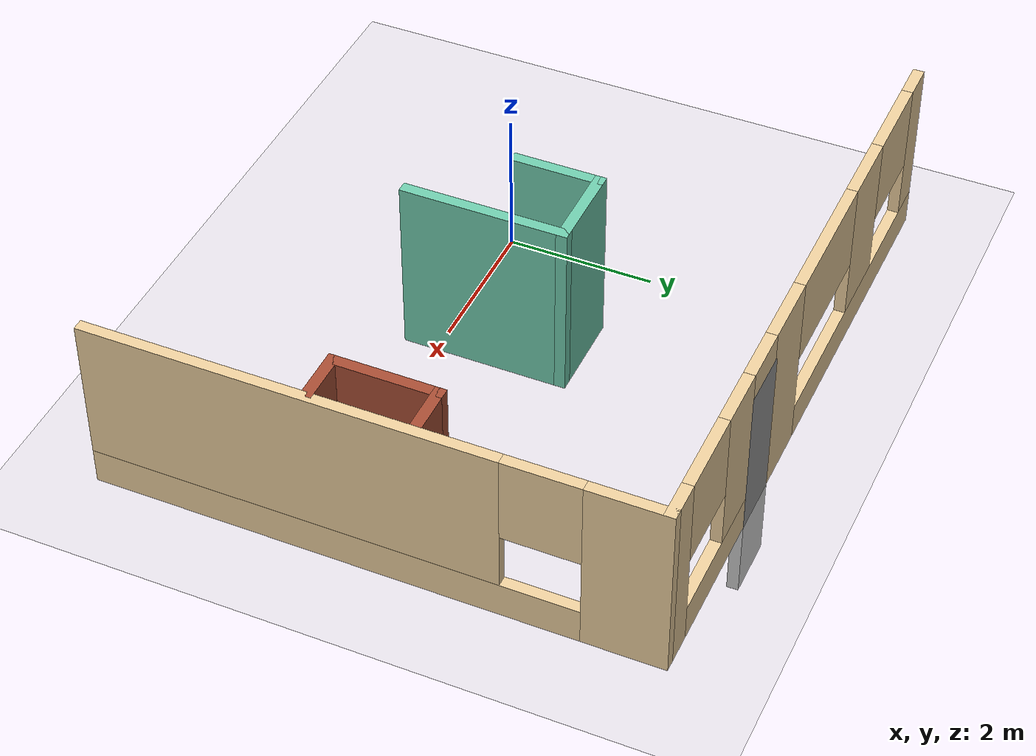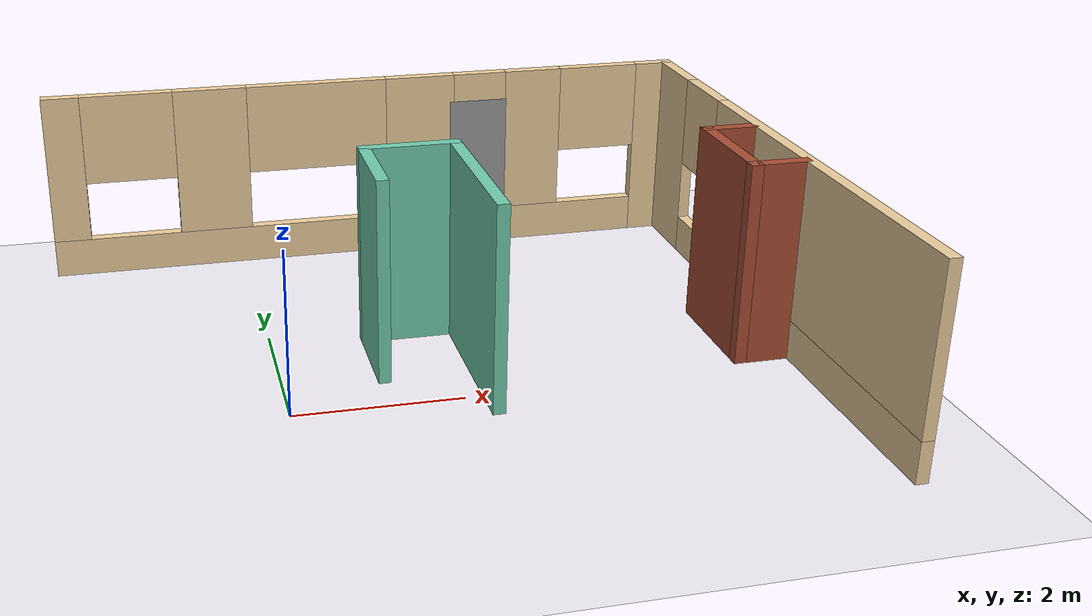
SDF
<sdf version="1.6">
 <world name="default">
  <model name="ground_plane">
   <static>1</static>
   <link name="link">
    <collision name="collision">
     <geometry><plane><normal>0 0 1</normal><size>100 100</size></plane></geometry>
     <surface><friction><ode><mu>100</mu><mu2>50</mu2></ode></friction></surface>
    </collision>
    <visual name="visual">
     <cast_shadows>0</cast_shadows>
     <geometry><plane><normal>0 0 1</normal><size>100 100</size></plane></geometry>
     <material>
      <script><uri>file://media/materials/scripts/gazebo.material</uri><name>Gazebo/Grey</name></script>
     </material>
    </visual>
   </link>
  </model>
  <model name="my_world">
   <link name="Wall_0">
    <pose>5.30002 0.8 0 0 0 -1.5708</pose>
    <visual name="Wall_0_Visual_0">
     <pose>-3.20604 0 1.25 0 -0 0</pose>
     <geometry><box><size>1.08792 0.15 2.5</size></box></geometry>
     <material>
      <script><uri>file://media/materials/scripts/gazebo.material</uri><name>Gazebo/Grey</name></script>
      <ambient>0.921569 0.807843 0.615686 1</ambient>
      <diffuse>0.7 0.7 0.7 1</diffuse>
      <specular>0.01 0.01 0.01 1</specular>
      <emissive>0 0 0 1</emissive>
      <shader type="pixel"/>
     </material>
     <meta><layer>0</layer></meta>
    </visual>
    <visual name="Wall_0_Visual_1">
     <pose>0.543962 0 0.25 0 -0 0</pose>
     <geometry><box><size>6.41208 0.15 0.5</size></box></geometry>
     <material>
      <script><uri>file://media/materials/scripts/gazebo.material</uri><name>Gazebo/Grey</name></script>
      <ambient>0.921569 0.807843 0.615686 1</ambient>
      <diffuse>0.7 0.7 0.7 1</diffuse>
      <specular>0.01 0.01 0.01 1</specular>
      <emissive>0 0 0 1</emissive>
      <shader type="pixel"/>
     </material>
     <meta><layer>0</layer></meta>
    </visual>
    <visual name="Wall_0_Visual_2">
     <pose>1.05042 0 1.5 0 -0 0</pose>
     <geometry><box><size>5.39915 0.15 2</size></box></geometry>
     <material>
      <script><uri>file://media/materials/scripts/gazebo.material</uri><name>Gazebo/Grey</name></script>
      <ambient>0.921569 0.807843 0.615686 1</ambient>
      <diffuse>0.7 0.7 0.7 1</diffuse>
      <specular>0.01 0.01 0.01 1</specular>
      <emissive>0 0 0 1</emissive>
      <shader type="pixel"/>
     </material>
     <meta><layer>0</layer></meta>
    </visual>
    <visual name="Wall_0_Visual_3">
     <pose>-2.15562 0 1.9 0 -0 0</pose>
     <geometry><box><size>1.01292 0.15 1.2</size></box></geometry>
     <material>
      <script><uri>file://media/materials/scripts/gazebo.material</uri><name>Gazebo/Grey</name></script>
      <ambient>0.921569 0.807843 0.615686 1</ambient>
      <diffuse>0.7 0.7 0.7 1</diffuse>
      <specular>0.01 0.01 0.01 1</specular>
      <emissive>0 0 0 1</emissive>
      <shader type="pixel"/>
     </material>
     <meta><layer>0</layer></meta>
    </visual>
    <collision name="Wall_0_Collision_0">
     <pose>-3.20604 0 1.25 0 -0 0</pose>
     <geometry><box><size>1.08792 0.15 2.5</size></box></geometry>
     <surface>
      <friction>
       <ode><mu>1</mu><mu2>1</mu2><fdir1>0 0 0</fdir1><slip1>0</slip1><slip2>0</slip2></ode>
       <torsional>
        <coefficient>1</coefficient>
        <patch_radius>0</patch_radius>
        <surface_radius>0</surface_radius>
        <use_patch_radius>1</use_patch_radius>
        <ode><slip>0</slip></ode>
       </torsional>
      </friction>
      <bounce><restitution_coefficient>0</restitution_coefficient><threshold>1e+06</threshold></bounce>
      <contact>
       <collide_without_contact>0</collide_without_contact>
       <collide_without_contact_bitmask>1</collide_without_contact_bitmask>
       <collide_bitmask>1</collide_bitmask>
       <ode>
        <soft_cfm>0</soft_cfm>
        <soft_erp>0.2</soft_erp>
        <kp>1e+13</kp>
        <kd>1</kd>
        <max_vel>0.01</max_vel>
        <min_depth>0</min_depth>
       </ode>
       <bullet>
        <split_impulse>1</split_impulse>
        <split_impulse_penetration_threshold>-0.01</split_impulse_penetration_threshold>
        <soft_cfm>0</soft_cfm>
        <soft_erp>0.2</soft_erp>
        <kp>1e+13</kp>
        <kd>1</kd>
       </bullet>
      </contact>
     </surface>
    </collision>
    <collision name="Wall_0_Collision_3">
     <pose>-2.15562 0 1.9 0 -0 0</pose>
     <geometry><box><size>1.01292 0.15 1.2</size></box></geometry>
     <surface>
      <friction>
       <ode><mu>1</mu><mu2>1</mu2><fdir1>0 0 0</fdir1><slip1>0</slip1><slip2>0</slip2></ode>
       <torsional>
        <coefficient>1</coefficient>
        <patch_radius>0</patch_radius>
        <surface_radius>0</surface_radius>
        <use_patch_radius>1</use_patch_radius>
        <ode><slip>0</slip></ode>
       </torsional>
      </friction>
      <bounce><restitution_coefficient>0</restitution_coefficient><threshold>1e+06</threshold></bounce>
      <contact>
       <collide_without_contact>0</collide_without_contact>
       <collide_without_contact_bitmask>1</collide_without_contact_bitmask>
       <collide_bitmask>1</collide_bitmask>
       <ode>
        <soft_cfm>0</soft_cfm>
        <soft_erp>0.2</soft_erp>
        <kp>1e+13</kp>
        <kd>1</kd>
        <max_vel>0.01</max_vel>
        <min_depth>0</min_depth>
       </ode>
       <bullet>
        <split_impulse>1</split_impulse>
        <split_impulse_penetration_threshold>-0.01</split_impulse_penetration_threshold>
        <soft_cfm>0</soft_cfm>
        <soft_erp>0.2</soft_erp>
        <kp>1e+13</kp>
        <kd>1</kd>
       </bullet>
      </contact>
     </surface>
    </collision>
    <collision name="Wall_0_Collision_1">
     <pose>0.543962 0 0.25 0 -0 0</pose>
     <geometry><box><size>6.41208 0.15 0.5</size></box></geometry>
     <surface>
      <friction>
       <ode><mu>1</mu><mu2>1</mu2><fdir1>0 0 0</fdir1><slip1>0</slip1><slip2>0</slip2></ode>
       <torsional>
        <coefficient>1</coefficient>
        <patch_radius>0</patch_radius>
        <surface_radius>0</surface_radius>
        <use_patch_radius>1</use_patch_radius>
        <ode><slip>0</slip></ode>
       </torsional>
      </friction>
      <bounce><restitution_coefficient>0</restitution_coefficient><threshold>1e+06</threshold></bounce>
      <contact>
       <collide_without_contact>0</collide_without_contact>
       <collide_without_contact_bitmask>1</collide_without_contact_bitmask>
       <collide_bitmask>1</collide_bitmask>
       <ode>
        <soft_cfm>0</soft_cfm>
        <soft_erp>0.2</soft_erp>
        <kp>1e+13</kp>
        <kd>1</kd>
        <max_vel>0.01</max_vel>
        <min_depth>0</min_depth>
       </ode>
       <bullet>
        <split_impulse>1</split_impulse>
        <split_impulse_penetration_threshold>-0.01</split_impulse_penetration_threshold>
        <soft_cfm>0</soft_cfm>
        <soft_erp>0.2</soft_erp>
        <kp>1e+13</kp>
        <kd>1</kd>
       </bullet>
      </contact>
     </surface>
    </collision>
    <collision name="Wall_0_Collision_2">
     <pose>1.05042 0 1.5 0 -0 0</pose>
     <geometry><box><size>5.39915 0.15 2</size></box></geometry>
     <surface>
      <friction>
       <ode><mu>1</mu><mu2>1</mu2><fdir1>0 0 0</fdir1><slip1>0</slip1><slip2>0</slip2></ode>
       <torsional>
        <coefficient>1</coefficient>
        <patch_radius>0</patch_radius>
        <surface_radius>0</surface_radius>
        <use_patch_radius>1</use_patch_radius>
        <ode><slip>0</slip></ode>
       </torsional>
      </friction>
      <bounce><restitution_coefficient>0</restitution_coefficient><threshold>1e+06</threshold></bounce>
      <contact>
       <collide_without_contact>0</collide_without_contact>
       <collide_without_contact_bitmask>1</collide_without_contact_bitmask>
       <collide_bitmask>1</collide_bitmask>
       <ode>
        <soft_cfm>0</soft_cfm>
        <soft_erp>0.2</soft_erp>
        <kp>1e+13</kp>
        <kd>1</kd>
        <max_vel>0.01</max_vel>
        <min_depth>0</min_depth>
       </ode>
       <bullet>
        <split_impulse>1</split_impulse>
        <split_impulse_penetration_threshold>-0.01</split_impulse_penetration_threshold>
        <soft_cfm>0</soft_cfm>
        <soft_erp>0.2</soft_erp>
        <kp>1e+13</kp>
        <kd>1</kd>
       </bullet>
      </contact>
     </surface>
    </collision>
   </link>
   <link name="Wall_10">
    <pose>1.00002 4.475 0 0 -0 3.14159</pose>
    <inertial>
     <mass>1</mass>
     <inertia><ixx>1</ixx><ixy>0</ixy><ixz>0</ixz><iyy>1</iyy><iyz>0</iyz><izz>1</izz></inertia>
    </inertial>
    <visual name="Wall_10_Visual_0">
     <pose>-4.10405 0 1.25 0 -0 0</pose>
     <geometry><box><size>0.541899 0.15 2.5</size></box></geometry>
     <material>
      <script><uri>file://media/materials/scripts/gazebo.material</uri><name>Gazebo/Grey</name></script>
      <ambient>0.922 0.808 0.616 1</ambient>
      <diffuse>0.7 0.7 0.7 1</diffuse>
      <specular>0.01 0.01 0.01 1</specular>
      <emissive>0 0 0 1</emissive>
      <shader type="pixel"><normal_map>__default__</normal_map></shader>
     </material>
     <meta><layer>0</layer></meta>
    </visual>
    <visual name="Wall_10_Visual_1">
     <pose>-0.693015 0 1.25 0 -0 0</pose>
     <geometry><box><size>0.959191 0.15 2.5</size></box></geometry>
     <material>
      <script><uri>file://media/materials/scripts/gazebo.material</uri><name>Gazebo/Grey</name></script>
      <ambient>0.922 0.808 0.616 1</ambient>
      <diffuse>0.7 0.7 0.7 1</diffuse>
      <specular>0.01 0.01 0.01 1</specular>
      <emissive>0 0 0 1</emissive>
      <shader type="pixel"><normal_map>__default__</normal_map></shader>
     </material>
     <meta><layer>0</layer></meta>
    </visual>
    <visual name="Wall_10_Visual_2">
     <pose>-2.87351 0 0.25 0 -0 0</pose>
     <geometry><box><size>1.91919 0.15 0.5</size></box></geometry>
     <material>
      <script><uri>file://media/materials/scripts/gazebo.material</uri><name>Gazebo/Grey</name></script>
      <ambient>0.922 0.808 0.616 1</ambient>
      <diffuse>0.7 0.7 0.7 1</diffuse>
      <specular>0.01 0.01 0.01 1</specular>
      <emissive>0 0 0 1</emissive>
      <shader type="pixel"><normal_map>__default__</normal_map></shader>
     </material>
     <meta><layer>0</layer></meta>
    </visual>
    <visual name="Wall_10_Visual_3">
     <pose>2.08079 0 0.25 0 -0 0</pose>
     <geometry><box><size>4.58842 0.15 0.5</size></box></geometry>
     <material>
      <script><uri>file://media/materials/scripts/gazebo.material</uri><name>Gazebo/Grey</name></script>
      <ambient>0.922 0.808 0.616 1</ambient>
      <diffuse>0.7 0.7 0.7 1</diffuse>
      <specular>0.01 0.01 0.01 1</specular>
      <emissive>0 0 0 1</emissive>
      <shader type="pixel"><normal_map>__default__</normal_map></shader>
     </material>
     <meta><layer>0</layer></meta>
    </visual>
    <visual name="Wall_10_Visual_4">
     <pose>-2.31381 0 1.5 0 -0 0</pose>
     <geometry><box><size>0.799807 0.15 2</size></box></geometry>
     <material>
      <script><uri>file://media/materials/scripts/gazebo.material</uri><name>Gazebo/Grey</name></script>
      <ambient>0.922 0.808 0.616 1</ambient>
      <diffuse>0.7 0.7 0.7 1</diffuse>
      <specular>0.01 0.01 0.01 1</specular>
      <emissive>0 0 0 1</emissive>
      <shader type="pixel"><normal_map>__default__</normal_map></shader>
     </material>
     <meta><layer>0</layer></meta>
    </visual>
    <visual name="Wall_10_Visual_5">
     <pose>-2.31381 0 1.5 0 -0 0</pose>
     <geometry><box><size>0.799807 0.15 2</size></box></geometry>
     <material>
      <script><uri>file://media/materials/scripts/gazebo.material</uri><name>Gazebo/Grey</name></script>
      <ambient>0.922 0.808 0.616 1</ambient>
      <diffuse>0.7 0.7 0.7 1</diffuse>
      <specular>0.01 0.01 0.01 1</specular>
      <emissive>0 0 0 1</emissive>
      <shader type="pixel"><normal_map>__default__</normal_map></shader>
     </material>
     <meta><layer>0</layer></meta>
    </visual>
    <visual name="Wall_10_Visual_6">
     <pose>2.18653 0 1.5 0 -0 0</pose>
     <geometry><box><size>0.979424 0.15 2</size></box></geometry>
     <material>
      <script><uri>file://media/materials/scripts/gazebo.material</uri><name>Gazebo/Grey</name></script>
      <ambient>0.922 0.808 0.616 1</ambient>
      <diffuse>0.7 0.7 0.7 1</diffuse>
      <specular>0.01 0.01 0.01 1</specular>
      <emissive>0 0 0 1</emissive>
      <shader type="pixel"><normal_map>__default__</normal_map></shader>
     </material>
     <meta><layer>0</layer></meta>
    </visual>
    <visual name="Wall_10_Visual_7">
     <pose>4.13094 0 1.5 0 -0 0</pose>
     <geometry><box><size>0.48812 0.15 2</size></box></geometry>
     <material>
      <script><uri>file://media/materials/scripts/gazebo.material</uri><name>Gazebo/Grey</name></script>
      <ambient>0.922 0.808 0.616 1</ambient>
      <diffuse>0.7 0.7 0.7 1</diffuse>
      <specular>0.01 0.01 0.01 1</specular>
      <emissive>0 0 0 1</emissive>
      <shader type="pixel"><normal_map>__default__</normal_map></shader>
     </material>
     <meta><layer>0</layer></meta>
    </visual>
    <visual name="Wall_10_Visual_8">
     <pose>-3.27341 0 1.9 0 -0 0</pose>
     <geometry><box><size>1.11938 0.15 1.2</size></box></geometry>
     <material>
      <script><uri>file://media/materials/scripts/gazebo.material</uri><name>Gazebo/Grey</name></script>
      <ambient>0.922 0.808 0.616 1</ambient>
      <diffuse>0.7 0.7 0.7 1</diffuse>
      <specular>0.01 0.01 0.01 1</specular>
      <emissive>0 0 0 1</emissive>
      <shader type="pixel"><normal_map>__default__</normal_map></shader>
     </material>
     <meta><layer>0</layer></meta>
    </visual>
    <visual name="Wall_10_Visual_9">
     <pose>0.741701 0 1.9 0 -0 0</pose>
     <geometry><box><size>1.91024 0.15 1.2</size></box></geometry>
     <material>
      <script><uri>file://media/materials/scripts/gazebo.material</uri><name>Gazebo/Grey</name></script>
      <ambient>0.922 0.808 0.616 1</ambient>
      <diffuse>0.7 0.7 0.7 1</diffuse>
      <specular>0.01 0.01 0.01 1</specular>
      <emissive>0 0 0 1</emissive>
      <shader type="pixel"><normal_map>__default__</normal_map></shader>
     </material>
     <meta><layer>0</layer></meta>
    </visual>
    <visual name="Wall_10_Visual_10">
     <pose>3.28156 0 1.9 0 -0 0</pose>
     <geometry><box><size>1.21064 0.15 1.2</size></box></geometry>
     <material>
      <script><uri>file://media/materials/scripts/gazebo.material</uri><name>Gazebo/Grey</name></script>
      <ambient>0.922 0.808 0.616 1</ambient>
      <diffuse>0.7 0.7 0.7 1</diffuse>
      <specular>0.01 0.01 0.01 1</specular>
      <emissive>0 0 0 1</emissive>
      <shader type="pixel"><normal_map>__default__</normal_map></shader>
     </material>
     <meta><layer>0</layer></meta>
    </visual>
    <visual name="Wall_10_Visual_11">
     <pose>-1.54326 0 2.25 0 -0 0</pose>
     <geometry><box><size>0.7413 0.15 0.5</size></box></geometry>
     <material>
      <script><uri>file://media/materials/scripts/gazebo.material</uri><name>Gazebo/Grey</name></script>
      <ambient>0.922 0.808 0.616 1</ambient>
      <diffuse>0.7 0.7 0.7 1</diffuse>
      <specular>0.01 0.01 0.01 1</specular>
      <emissive>0 0 0 1</emissive>
      <shader type="pixel"><normal_map>__default__</normal_map></shader>
     </material>
     <meta><layer>0</layer></meta>
    </visual>
    <visual name="Wall_10_Visual_12">
     <pose>-1.54326 0 2.25 0 -0 0</pose>
     <geometry><box><size>0.7413 0.15 0.5</size></box></geometry>
     <material>
      <script><uri>file://media/materials/scripts/gazebo.material</uri><name>Gazebo/Grey</name></script>
      <ambient>0.922 0.808 0.616 1</ambient>
      <diffuse>0.7 0.7 0.7 1</diffuse>
      <specular>0.01 0.01 0.01 1</specular>
      <emissive>0 0 0 1</emissive>
      <shader type="pixel"><normal_map>__default__</normal_map></shader>
     </material>
     <meta><layer>0</layer></meta>
    </visual>
    <collision name="Wall_10_Collision_8">
     <pose>-3.27341 0 1.9 0 -0 0</pose>
     <geometry><box><size>1.11938 0.15 1.2</size></box></geometry>
     <surface>
      <friction>
       <ode><mu>1</mu><mu2>1</mu2><fdir1>0 0 0</fdir1><slip1>0</slip1><slip2>0</slip2></ode>
       <torsional>
        <coefficient>1</coefficient>
        <patch_radius>0</patch_radius>
        <surface_radius>0</surface_radius>
        <use_patch_radius>1</use_patch_radius>
        <ode><slip>0</slip></ode>
       </torsional>
      </friction>
      <bounce><restitution_coefficient>0</restitution_coefficient><threshold>1e+06</threshold></bounce>
      <contact>
       <collide_without_contact>0</collide_without_contact>
       <collide_without_contact_bitmask>1</collide_without_contact_bitmask>
       <collide_bitmask>1</collide_bitmask>
       <ode>
        <soft_cfm>0</soft_cfm>
        <soft_erp>0.2</soft_erp>
        <kp>1e+13</kp>
        <kd>1</kd>
        <max_vel>0.01</max_vel>
        <min_depth>0</min_depth>
       </ode>
       <bullet>
        <split_impulse>1</split_impulse>
        <split_impulse_penetration_threshold>-0.01</split_impulse_penetration_threshold>
        <soft_cfm>0</soft_cfm>
        <soft_erp>0.2</soft_erp>
        <kp>1e+13</kp>
        <kd>1</kd>
       </bullet>
      </contact>
     </surface>
    </collision>
    <collision name="Wall_10_Collision_0">
     <pose>-4.10405 0 1.25 0 -0 0</pose>
     <geometry><box><size>0.541899 0.15 2.5</size></box></geometry>
     <surface>
      <friction>
       <ode><mu>1</mu><mu2>1</mu2><fdir1>0 0 0</fdir1><slip1>0</slip1><slip2>0</slip2></ode>
       <torsional>
        <coefficient>1</coefficient>
        <patch_radius>0</patch_radius>
        <surface_radius>0</surface_radius>
        <use_patch_radius>1</use_patch_radius>
        <ode><slip>0</slip></ode>
       </torsional>
      </friction>
      <bounce><restitution_coefficient>0</restitution_coefficient><threshold>1e+06</threshold></bounce>
      <contact>
       <collide_without_contact>0</collide_without_contact>
       <collide_without_contact_bitmask>1</collide_without_contact_bitmask>
       <collide_bitmask>1</collide_bitmask>
       <ode>
        <soft_cfm>0</soft_cfm>
        <soft_erp>0.2</soft_erp>
        <kp>1e+13</kp>
        <kd>1</kd>
        <max_vel>0.01</max_vel>
        <min_depth>0</min_depth>
       </ode>
       <bullet>
        <split_impulse>1</split_impulse>
        <split_impulse_penetration_threshold>-0.01</split_impulse_penetration_threshold>
        <soft_cfm>0</soft_cfm>
        <soft_erp>0.2</soft_erp>
        <kp>1e+13</kp>
        <kd>1</kd>
       </bullet>
      </contact>
     </surface>
    </collision>
    <collision name="Wall_10_Collision_2">
     <pose>-2.87351 0 0.25 0 -0 0</pose>
     <geometry><box><size>1.91919 0.15 0.5</size></box></geometry>
     <surface>
      <friction>
       <ode><mu>1</mu><mu2>1</mu2><fdir1>0 0 0</fdir1><slip1>0</slip1><slip2>0</slip2></ode>
       <torsional>
        <coefficient>1</coefficient>
        <patch_radius>0</patch_radius>
        <surface_radius>0</surface_radius>
        <use_patch_radius>1</use_patch_radius>
        <ode><slip>0</slip></ode>
       </torsional>
      </friction>
      <bounce><restitution_coefficient>0</restitution_coefficient><threshold>1e+06</threshold></bounce>
      <contact>
       <collide_without_contact>0</collide_without_contact>
       <collide_without_contact_bitmask>1</collide_without_contact_bitmask>
       <collide_bitmask>1</collide_bitmask>
       <ode>
        <soft_cfm>0</soft_cfm>
        <soft_erp>0.2</soft_erp>
        <kp>1e+13</kp>
        <kd>1</kd>
        <max_vel>0.01</max_vel>
        <min_depth>0</min_depth>
       </ode>
       <bullet>
        <split_impulse>1</split_impulse>
        <split_impulse_penetration_threshold>-0.01</split_impulse_penetration_threshold>
        <soft_cfm>0</soft_cfm>
        <soft_erp>0.2</soft_erp>
        <kp>1e+13</kp>
        <kd>1</kd>
       </bullet>
      </contact>
     </surface>
    </collision>
    <collision name="Wall_10_Collision_1">
     <pose>-0.693015 0 1.25 0 -0 0</pose>
     <geometry><box><size>0.959191 0.15 2.5</size></box></geometry>
     <surface>
      <friction>
       <ode><mu>1</mu><mu2>1</mu2><fdir1>0 0 0</fdir1><slip1>0</slip1><slip2>0</slip2></ode>
       <torsional>
        <coefficient>1</coefficient>
        <patch_radius>0</patch_radius>
        <surface_radius>0</surface_radius>
        <use_patch_radius>1</use_patch_radius>
        <ode><slip>0</slip></ode>
       </torsional>
      </friction>
      <bounce><restitution_coefficient>0</restitution_coefficient><threshold>1e+06</threshold></bounce>
      <contact>
       <collide_without_contact>0</collide_without_contact>
       <collide_without_contact_bitmask>1</collide_without_contact_bitmask>
       <collide_bitmask>1</collide_bitmask>
       <ode>
        <soft_cfm>0</soft_cfm>
        <soft_erp>0.2</soft_erp>
        <kp>1e+13</kp>
        <kd>1</kd>
        <max_vel>0.01</max_vel>
        <min_depth>0</min_depth>
       </ode>
       <bullet>
        <split_impulse>1</split_impulse>
        <split_impulse_penetration_threshold>-0.01</split_impulse_penetration_threshold>
        <soft_cfm>0</soft_cfm>
        <soft_erp>0.2</soft_erp>
        <kp>1e+13</kp>
        <kd>1</kd>
       </bullet>
      </contact>
     </surface>
    </collision>
    <collision name="Wall_10_Collision_3">
     <pose>2.08079 0 0.25 0 -0 0</pose>
     <geometry><box><size>4.58842 0.15 0.5</size></box></geometry>
     <surface>
      <friction>
       <ode><mu>1</mu><mu2>1</mu2><fdir1>0 0 0</fdir1><slip1>0</slip1><slip2>0</slip2></ode>
       <torsional>
        <coefficient>1</coefficient>
        <patch_radius>0</patch_radius>
        <surface_radius>0</surface_radius>
        <use_patch_radius>1</use_patch_radius>
        <ode><slip>0</slip></ode>
       </torsional>
      </friction>
      <bounce><restitution_coefficient>0</restitution_coefficient><threshold>1e+06</threshold></bounce>
      <contact>
       <collide_without_contact>0</collide_without_contact>
       <collide_without_contact_bitmask>1</collide_without_contact_bitmask>
       <collide_bitmask>1</collide_bitmask>
       <ode>
        <soft_cfm>0</soft_cfm>
        <soft_erp>0.2</soft_erp>
        <kp>1e+13</kp>
        <kd>1</kd>
        <max_vel>0.01</max_vel>
        <min_depth>0</min_depth>
       </ode>
       <bullet>
        <split_impulse>1</split_impulse>
        <split_impulse_penetration_threshold>-0.01</split_impulse_penetration_threshold>
        <soft_cfm>0</soft_cfm>
        <soft_erp>0.2</soft_erp>
        <kp>1e+13</kp>
        <kd>1</kd>
       </bullet>
      </contact>
     </surface>
    </collision>
    <collision name="Wall_10_Collision_5">
     <pose>-2.31381 0 1.5 0 -0 0</pose>
     <geometry><box><size>0.799807 0.15 2</size></box></geometry>
     <surface>
      <friction>
       <ode><mu>1</mu><mu2>1</mu2><fdir1>0 0 0</fdir1><slip1>0</slip1><slip2>0</slip2></ode>
       <torsional>
        <coefficient>1</coefficient>
        <patch_radius>0</patch_radius>
        <surface_radius>0</surface_radius>
        <use_patch_radius>1</use_patch_radius>
        <ode><slip>0</slip></ode>
       </torsional>
      </friction>
      <bounce><restitution_coefficient>0</restitution_coefficient><threshold>1e+06</threshold></bounce>
      <contact>
       <collide_without_contact>0</collide_without_contact>
       <collide_without_contact_bitmask>1</collide_without_contact_bitmask>
       <collide_bitmask>1</collide_bitmask>
       <ode>
        <soft_cfm>0</soft_cfm>
        <soft_erp>0.2</soft_erp>
        <kp>1e+13</kp>
        <kd>1</kd>
        <max_vel>0.01</max_vel>
        <min_depth>0</min_depth>
       </ode>
       <bullet>
        <split_impulse>1</split_impulse>
        <split_impulse_penetration_threshold>-0.01</split_impulse_penetration_threshold>
        <soft_cfm>0</soft_cfm>
        <soft_erp>0.2</soft_erp>
        <kp>1e+13</kp>
        <kd>1</kd>
       </bullet>
      </contact>
     </surface>
    </collision>
    <collision name="Wall_10_Collision_4">
     <pose>-2.31381 0 1.5 0 -0 0</pose>
     <geometry><box><size>0.799807 0.15 2</size></box></geometry>
     <surface>
      <friction>
       <ode><mu>1</mu><mu2>1</mu2><fdir1>0 0 0</fdir1><slip1>0</slip1><slip2>0</slip2></ode>
       <torsional>
        <coefficient>1</coefficient>
        <patch_radius>0</patch_radius>
        <surface_radius>0</surface_radius>
        <use_patch_radius>1</use_patch_radius>
        <ode><slip>0</slip></ode>
       </torsional>
      </friction>
      <bounce><restitution_coefficient>0</restitution_coefficient><threshold>1e+06</threshold></bounce>
      <contact>
       <collide_without_contact>0</collide_without_contact>
       <collide_without_contact_bitmask>1</collide_without_contact_bitmask>
       <collide_bitmask>1</collide_bitmask>
       <ode>
        <soft_cfm>0</soft_cfm>
        <soft_erp>0.2</soft_erp>
        <kp>1e+13</kp>
        <kd>1</kd>
        <max_vel>0.01</max_vel>
        <min_depth>0</min_depth>
       </ode>
       <bullet>
        <split_impulse>1</split_impulse>
        <split_impulse_penetration_threshold>-0.01</split_impulse_penetration_threshold>
        <soft_cfm>0</soft_cfm>
        <soft_erp>0.2</soft_erp>
        <kp>1e+13</kp>
        <kd>1</kd>
       </bullet>
      </contact>
     </surface>
    </collision>
    <collision name="Wall_10_Collision_6">
     <pose>2.18653 0 1.5 0 -0 0</pose>
     <geometry><box><size>0.979424 0.15 2</size></box></geometry>
     <surface>
      <friction>
       <ode><mu>1</mu><mu2>1</mu2><fdir1>0 0 0</fdir1><slip1>0</slip1><slip2>0</slip2></ode>
       <torsional>
        <coefficient>1</coefficient>
        <patch_radius>0</patch_radius>
        <surface_radius>0</surface_radius>
        <use_patch_radius>1</use_patch_radius>
        <ode><slip>0</slip></ode>
       </torsional>
      </friction>
      <bounce><restitution_coefficient>0</restitution_coefficient><threshold>1e+06</threshold></bounce>
      <contact>
       <collide_without_contact>0</collide_without_contact>
       <collide_without_contact_bitmask>1</collide_without_contact_bitmask>
       <collide_bitmask>1</collide_bitmask>
       <ode>
        <soft_cfm>0</soft_cfm>
        <soft_erp>0.2</soft_erp>
        <kp>1e+13</kp>
        <kd>1</kd>
        <max_vel>0.01</max_vel>
        <min_depth>0</min_depth>
       </ode>
       <bullet>
        <split_impulse>1</split_impulse>
        <split_impulse_penetration_threshold>-0.01</split_impulse_penetration_threshold>
        <soft_cfm>0</soft_cfm>
        <soft_erp>0.2</soft_erp>
        <kp>1e+13</kp>
        <kd>1</kd>
       </bullet>
      </contact>
     </surface>
    </collision>
    <collision name="Wall_10_Collision_7">
     <pose>4.13094 0 1.5 0 -0 0</pose>
     <geometry><box><size>0.48812 0.15 2</size></box></geometry>
     <surface>
      <friction>
       <ode><mu>1</mu><mu2>1</mu2><fdir1>0 0 0</fdir1><slip1>0</slip1><slip2>0</slip2></ode>
       <torsional>
        <coefficient>1</coefficient>
        <patch_radius>0</patch_radius>
        <surface_radius>0</surface_radius>
        <use_patch_radius>1</use_patch_radius>
        <ode><slip>0</slip></ode>
       </torsional>
      </friction>
      <bounce><restitution_coefficient>0</restitution_coefficient><threshold>1e+06</threshold></bounce>
      <contact>
       <collide_without_contact>0</collide_without_contact>
       <collide_without_contact_bitmask>1</collide_without_contact_bitmask>
       <collide_bitmask>1</collide_bitmask>
       <ode>
        <soft_cfm>0</soft_cfm>
        <soft_erp>0.2</soft_erp>
        <kp>1e+13</kp>
        <kd>1</kd>
        <max_vel>0.01</max_vel>
        <min_depth>0</min_depth>
       </ode>
       <bullet>
        <split_impulse>1</split_impulse>
        <split_impulse_penetration_threshold>-0.01</split_impulse_penetration_threshold>
        <soft_cfm>0</soft_cfm>
        <soft_erp>0.2</soft_erp>
        <kp>1e+13</kp>
        <kd>1</kd>
       </bullet>
      </contact>
     </surface>
    </collision>
    <collision name="Wall_10_Collision_9">
     <pose>0.741701 0 1.9 0 -0 0</pose>
     <geometry><box><size>1.91024 0.15 1.2</size></box></geometry>
     <surface>
      <friction>
       <ode><mu>1</mu><mu2>1</mu2><fdir1>0 0 0</fdir1><slip1>0</slip1><slip2>0</slip2></ode>
       <torsional>
        <coefficient>1</coefficient>
        <patch_radius>0</patch_radius>
        <surface_radius>0</surface_radius>
        <use_patch_radius>1</use_patch_radius>
        <ode><slip>0</slip></ode>
       </torsional>
      </friction>
      <bounce><restitution_coefficient>0</restitution_coefficient><threshold>1e+06</threshold></bounce>
      <contact>
       <collide_without_contact>0</collide_without_contact>
       <collide_without_contact_bitmask>1</collide_without_contact_bitmask>
       <collide_bitmask>1</collide_bitmask>
       <ode>
        <soft_cfm>0</soft_cfm>
        <soft_erp>0.2</soft_erp>
        <kp>1e+13</kp>
        <kd>1</kd>
        <max_vel>0.01</max_vel>
        <min_depth>0</min_depth>
       </ode>
       <bullet>
        <split_impulse>1</split_impulse>
        <split_impulse_penetration_threshold>-0.01</split_impulse_penetration_threshold>
        <soft_cfm>0</soft_cfm>
        <soft_erp>0.2</soft_erp>
        <kp>1e+13</kp>
        <kd>1</kd>
       </bullet>
      </contact>
     </surface>
    </collision>
    <collision name="Wall_10_Collision_10">
     <pose>3.28156 0 1.9 0 -0 0</pose>
     <geometry><box><size>1.21064 0.15 1.2</size></box></geometry>
     <surface>
      <friction>
       <ode><mu>1</mu><mu2>1</mu2><fdir1>0 0 0</fdir1><slip1>0</slip1><slip2>0</slip2></ode>
       <torsional>
        <coefficient>1</coefficient>
        <patch_radius>0</patch_radius>
        <surface_radius>0</surface_radius>
        <use_patch_radius>1</use_patch_radius>
        <ode><slip>0</slip></ode>
       </torsional>
      </friction>
      <bounce><restitution_coefficient>0</restitution_coefficient><threshold>1e+06</threshold></bounce>
      <contact>
       <collide_without_contact>0</collide_without_contact>
       <collide_without_contact_bitmask>1</collide_without_contact_bitmask>
       <collide_bitmask>1</collide_bitmask>
       <ode>
        <soft_cfm>0</soft_cfm>
        <soft_erp>0.2</soft_erp>
        <kp>1e+13</kp>
        <kd>1</kd>
        <max_vel>0.01</max_vel>
        <min_depth>0</min_depth>
       </ode>
       <bullet>
        <split_impulse>1</split_impulse>
        <split_impulse_penetration_threshold>-0.01</split_impulse_penetration_threshold>
        <soft_cfm>0</soft_cfm>
        <soft_erp>0.2</soft_erp>
        <kp>1e+13</kp>
        <kd>1</kd>
       </bullet>
      </contact>
     </surface>
    </collision>
    <collision name="Wall_10_Collision_11">
     <pose>-1.54326 0 2.25 0 -0 0</pose>
     <geometry><box><size>0.7413 0.15 0.5</size></box></geometry>
     <surface>
      <friction>
       <ode><mu>1</mu><mu2>1</mu2><fdir1>0 0 0</fdir1><slip1>0</slip1><slip2>0</slip2></ode>
       <torsional>
        <coefficient>1</coefficient>
        <patch_radius>0</patch_radius>
        <surface_radius>0</surface_radius>
        <use_patch_radius>1</use_patch_radius>
        <ode><slip>0</slip></ode>
       </torsional>
      </friction>
      <bounce><restitution_coefficient>0</restitution_coefficient><threshold>1e+06</threshold></bounce>
      <contact>
       <collide_without_contact>0</collide_without_contact>
       <collide_without_contact_bitmask>1</collide_without_contact_bitmask>
       <collide_bitmask>1</collide_bitmask>
       <ode>
        <soft_cfm>0</soft_cfm>
        <soft_erp>0.2</soft_erp>
        <kp>1e+13</kp>
        <kd>1</kd>
        <max_vel>0.01</max_vel>
        <min_depth>0</min_depth>
       </ode>
       <bullet>
        <split_impulse>1</split_impulse>
        <split_impulse_penetration_threshold>-0.01</split_impulse_penetration_threshold>
        <soft_cfm>0</soft_cfm>
        <soft_erp>0.2</soft_erp>
        <kp>1e+13</kp>
        <kd>1</kd>
       </bullet>
      </contact>
     </surface>
    </collision>
    <collision name="Wall_10_Collision_12">
     <pose>-1.54326 0 2.25 0 -0 0</pose>
     <geometry><box><size>0.7413 0.15 0.5</size></box></geometry>
     <surface>
      <friction>
       <ode><mu>1</mu><mu2>1</mu2><fdir1>0 0 0</fdir1><slip1>0</slip1><slip2>0</slip2></ode>
       <torsional>
        <coefficient>1</coefficient>
        <patch_radius>0</patch_radius>
        <surface_radius>0</surface_radius>
        <use_patch_radius>1</use_patch_radius>
        <ode><slip>0</slip></ode>
       </torsional>
      </friction>
      <bounce><restitution_coefficient>0</restitution_coefficient><threshold>1e+06</threshold></bounce>
      <contact>
       <collide_without_contact>0</collide_without_contact>
       <collide_without_contact_bitmask>1</collide_without_contact_bitmask>
       <collide_bitmask>1</collide_bitmask>
       <ode>
        <soft_cfm>0</soft_cfm>
        <soft_erp>0.2</soft_erp>
        <kp>1e+13</kp>
        <kd>1</kd>
        <max_vel>0.01</max_vel>
        <min_depth>0</min_depth>
       </ode>
       <bullet>
        <split_impulse>1</split_impulse>
        <split_impulse_penetration_threshold>-0.01</split_impulse_penetration_threshold>
        <soft_cfm>0</soft_cfm>
        <soft_erp>0.2</soft_erp>
        <kp>1e+13</kp>
        <kd>1</kd>
       </bullet>
      </contact>
     </surface>
    </collision>
   </link>
   <link name="Wall_31">
    <pose>1.49279 0.507404 0 0 -0 1.5708</pose>
    <visual name="Wall_31_Visual">
     <pose>0 0 1.25 0 -0 0</pose>
     <geometry><box><size>2.25 0.15 2.5</size></box></geometry>
     <material>
      <script><uri>file://media/materials/scripts/gazebo.material</uri><name>Gazebo/Grey</name></script>
      <ambient>0.435294 0.796078 0.67451 1</ambient>
      <diffuse>0.7 0.7 0.7 1</diffuse>
      <specular>0.01 0.01 0.01 1</specular>
      <emissive>0 0 0 1</emissive>
      <shader type="pixel"/>
     </material>
     <meta><layer>0</layer></meta>
    </visual>
    <collision name="Wall_31_Collision">
     <pose>0 0 1.25 0 -0 0</pose>
     <geometry><box><size>2.25 0.15 2.5</size></box></geometry>
     <surface>
      <friction>
       <ode><mu>1</mu><mu2>1</mu2><fdir1>0 0 0</fdir1><slip1>0</slip1><slip2>0</slip2></ode>
       <torsional>
        <coefficient>1</coefficient>
        <patch_radius>0</patch_radius>
        <surface_radius>0</surface_radius>
        <use_patch_radius>1</use_patch_radius>
        <ode><slip>0</slip></ode>
       </torsional>
      </friction>
      <bounce><restitution_coefficient>0</restitution_coefficient><threshold>1e+06</threshold></bounce>
      <contact>
       <collide_without_contact>0</collide_without_contact>
       <collide_without_contact_bitmask>1</collide_without_contact_bitmask>
       <collide_bitmask>1</collide_bitmask>
       <ode>
        <soft_cfm>0</soft_cfm>
        <soft_erp>0.2</soft_erp>
        <kp>1e+13</kp>
        <kd>1</kd>
        <max_vel>0.01</max_vel>
        <min_depth>0</min_depth>
       </ode>
       <bullet>
        <split_impulse>1</split_impulse>
        <split_impulse_penetration_threshold>-0.01</split_impulse_penetration_threshold>
        <soft_cfm>0</soft_cfm>
        <soft_erp>0.2</soft_erp>
        <kp>1e+13</kp>
        <kd>1</kd>
       </bullet>
      </contact>
     </surface>
    </collision>
   </link>
   <link name="Wall_32">
    <pose>0.942789 1.5574 0 0 -0 3.14159</pose>
    <visual name="Wall_32_Visual">
     <pose>0 0 1.25 0 -0 0</pose>
     <geometry><box><size>1.25 0.15 2.5</size></box></geometry>
     <material>
      <script><uri>file://media/materials/scripts/gazebo.material</uri><name>Gazebo/Grey</name></script>
      <ambient>0.435294 0.796078 0.67451 1</ambient>
      <diffuse>0.7 0.7 0.7 1</diffuse>
      <specular>0.01 0.01 0.01 1</specular>
      <emissive>0 0 0 1</emissive>
      <shader type="pixel"/>
     </material>
     <meta><layer>0</layer></meta>
    </visual>
    <collision name="Wall_32_Collision">
     <pose>0 0 1.25 0 -0 0</pose>
     <geometry><box><size>1.25 0.15 2.5</size></box></geometry>
     <surface>
      <friction>
       <ode><mu>1</mu><mu2>1</mu2><fdir1>0 0 0</fdir1><slip1>0</slip1><slip2>0</slip2></ode>
       <torsional>
        <coefficient>1</coefficient>
        <patch_radius>0</patch_radius>
        <surface_radius>0</surface_radius>
        <use_patch_radius>1</use_patch_radius>
        <ode><slip>0</slip></ode>
       </torsional>
      </friction>
      <bounce><restitution_coefficient>0</restitution_coefficient><threshold>1e+06</threshold></bounce>
      <contact>
       <collide_without_contact>0</collide_without_contact>
       <collide_without_contact_bitmask>1</collide_without_contact_bitmask>
       <collide_bitmask>1</collide_bitmask>
       <ode>
        <soft_cfm>0</soft_cfm>
        <soft_erp>0.2</soft_erp>
        <kp>1e+13</kp>
        <kd>1</kd>
        <max_vel>0.01</max_vel>
        <min_depth>0</min_depth>
       </ode>
       <bullet>
        <split_impulse>1</split_impulse>
        <split_impulse_penetration_threshold>-0.01</split_impulse_penetration_threshold>
        <soft_cfm>0</soft_cfm>
        <soft_erp>0.2</soft_erp>
        <kp>1e+13</kp>
        <kd>1</kd>
       </bullet>
      </contact>
     </surface>
    </collision>
   </link>
   <link name="Wall_33">
    <pose>0.392789 1.0074 0 0 0 -1.5708</pose>
    <visual name="Wall_33_Visual">
     <pose>0 0 1.25 0 -0 0</pose>
     <geometry><box><size>1.25 0.15 2.5</size></box></geometry>
     <material>
      <script><uri>file://media/materials/scripts/gazebo.material</uri><name>Gazebo/Grey</name></script>
      <ambient>0.435294 0.796078 0.67451 1</ambient>
      <diffuse>0.7 0.7 0.7 1</diffuse>
      <specular>0.01 0.01 0.01 1</specular>
      <emissive>0 0 0 1</emissive>
      <shader type="pixel"/>
     </material>
     <meta><layer>0</layer></meta>
    </visual>
    <collision name="Wall_33_Collision">
     <pose>0 0 1.25 0 -0 0</pose>
     <geometry><box><size>1.25 0.15 2.5</size></box></geometry>
     <surface>
      <friction>
       <ode><mu>1</mu><mu2>1</mu2><fdir1>0 0 0</fdir1><slip1>0</slip1><slip2>0</slip2></ode>
       <torsional>
        <coefficient>1</coefficient>
        <patch_radius>0</patch_radius>
        <surface_radius>0</surface_radius>
        <use_patch_radius>1</use_patch_radius>
        <ode><slip>0</slip></ode>
       </torsional>
      </friction>
      <bounce><restitution_coefficient>0</restitution_coefficient><threshold>1e+06</threshold></bounce>
      <contact>
       <collide_without_contact>0</collide_without_contact>
       <collide_without_contact_bitmask>1</collide_without_contact_bitmask>
       <collide_bitmask>1</collide_bitmask>
       <ode>
        <soft_cfm>0</soft_cfm>
        <soft_erp>0.2</soft_erp>
        <kp>1e+13</kp>
        <kd>1</kd>
        <max_vel>0.01</max_vel>
        <min_depth>0</min_depth>
       </ode>
       <bullet>
        <split_impulse>1</split_impulse>
        <split_impulse_penetration_threshold>-0.01</split_impulse_penetration_threshold>
        <soft_cfm>0</soft_cfm>
        <soft_erp>0.2</soft_erp>
        <kp>1e+13</kp>
        <kd>1</kd>
       </bullet>
      </contact>
     </surface>
    </collision>
   </link>
   <link name="Wall_62">
    <pose>4.92742 0.021951 0 0 -0 3.14159</pose>
    <visual name="Wall_62_Visual">
     <pose>0 0 1.25 0 -0 0</pose>
     <geometry><box><size>0.75 0.15 2.5</size></box></geometry>
     <material>
      <script><uri>file://media/materials/scripts/gazebo.material</uri><name>Gazebo/Bricks</name></script>
      <ambient>1 1 1 1</ambient>
      <diffuse>1 1 1 1</diffuse>
      <specular>0.2 0.2 0.2 1</specular>
      <emissive>0 0 0 1</emissive>
      <shader type="pixel"/>
     </material>
     <meta><layer>0</layer></meta>
    </visual>
    <collision name="Wall_62_Collision">
     <pose>0 0 1.25 0 -0 0</pose>
     <geometry><box><size>0.75 0.15 2.5</size></box></geometry>
     <surface>
      <friction>
       <ode><mu>1</mu><mu2>1</mu2><fdir1>0 0 0</fdir1><slip1>0</slip1><slip2>0</slip2></ode>
       <torsional>
        <coefficient>1</coefficient>
        <patch_radius>0</patch_radius>
        <surface_radius>0</surface_radius>
        <use_patch_radius>1</use_patch_radius>
        <ode><slip>0</slip></ode>
       </torsional>
      </friction>
      <bounce><restitution_coefficient>0</restitution_coefficient><threshold>1e+06</threshold></bounce>
      <contact>
       <collide_without_contact>0</collide_without_contact>
       <collide_without_contact_bitmask>1</collide_without_contact_bitmask>
       <collide_bitmask>1</collide_bitmask>
       <ode>
        <soft_cfm>0</soft_cfm>
        <soft_erp>0.2</soft_erp>
        <kp>1e+13</kp>
        <kd>1</kd>
        <max_vel>0.01</max_vel>
        <min_depth>0</min_depth>
       </ode>
       <bullet>
        <split_impulse>1</split_impulse>
        <split_impulse_penetration_threshold>-0.01</split_impulse_penetration_threshold>
        <soft_cfm>0</soft_cfm>
        <soft_erp>0.2</soft_erp>
        <kp>1e+13</kp>
        <kd>1</kd>
       </bullet>
      </contact>
     </surface>
    </collision>
   </link>
   <link name="Wall_63">
    <pose>4.62742 0.696951 0 0 -0 1.5708</pose>
    <visual name="Wall_63_Visual">
     <pose>0 0 1.25 0 -0 0</pose>
     <geometry><box><size>1.5 0.15 2.5</size></box></geometry>
     <material>
      <script><uri>file://media/materials/scripts/gazebo.material</uri><name>Gazebo/Bricks</name></script>
      <ambient>1 1 1 1</ambient>
      <diffuse>1 1 1 1</diffuse>
      <specular>0.2 0.2 0.2 1</specular>
      <emissive>0 0 0 1</emissive>
      <shader type="pixel"/>
     </material>
     <meta><layer>0</layer></meta>
    </visual>
    <collision name="Wall_63_Collision">
     <pose>0 0 1.25 0 -0 0</pose>
     <geometry><box><size>1.5 0.15 2.5</size></box></geometry>
     <surface>
      <friction>
       <ode><mu>1</mu><mu2>1</mu2><fdir1>0 0 0</fdir1><slip1>0</slip1><slip2>0</slip2></ode>
       <torsional>
        <coefficient>1</coefficient>
        <patch_radius>0</patch_radius>
        <surface_radius>0</surface_radius>
        <use_patch_radius>1</use_patch_radius>
        <ode><slip>0</slip></ode>
       </torsional>
      </friction>
      <bounce><restitution_coefficient>0</restitution_coefficient><threshold>1e+06</threshold></bounce>
      <contact>
       <collide_without_contact>0</collide_without_contact>
       <collide_without_contact_bitmask>1</collide_without_contact_bitmask>
       <collide_bitmask>1</collide_bitmask>
       <ode>
        <soft_cfm>0</soft_cfm>
        <soft_erp>0.2</soft_erp>
        <kp>1e+13</kp>
        <kd>1</kd>
        <max_vel>0.01</max_vel>
        <min_depth>0</min_depth>
       </ode>
       <bullet>
        <split_impulse>1</split_impulse>
        <split_impulse_penetration_threshold>-0.01</split_impulse_penetration_threshold>
        <soft_cfm>0</soft_cfm>
        <soft_erp>0.2</soft_erp>
        <kp>1e+13</kp>
        <kd>1</kd>
       </bullet>
      </contact>
     </surface>
    </collision>
   </link>
   <link name="Wall_64">
    <pose>4.92742 1.37195 0 0 -0 0</pose>
    <visual name="Wall_64_Visual">
     <pose>0 0 1.25 0 -0 0</pose>
     <geometry><box><size>0.75 0.15 2.5</size></box></geometry>
     <material>
      <script><uri>file://media/materials/scripts/gazebo.material</uri><name>Gazebo/Bricks</name></script>
      <ambient>1 1 1 1</ambient>
      <diffuse>1 1 1 1</diffuse>
      <specular>0.2 0.2 0.2 1</specular>
      <emissive>0 0 0 1</emissive>
      <shader type="pixel"/>
     </material>
     <meta><layer>0</layer></meta>
    </visual>
    <collision name="Wall_64_Collision">
     <pose>0 0 1.25 0 -0 0</pose>
     <geometry><box><size>0.75 0.15 2.5</size></box></geometry>
     <surface>
      <friction>
       <ode><mu>1</mu><mu2>1</mu2><fdir1>0 0 0</fdir1><slip1>0</slip1><slip2>0</slip2></ode>
       <torsional>
        <coefficient>1</coefficient>
        <patch_radius>0</patch_radius>
        <surface_radius>0</surface_radius>
        <use_patch_radius>1</use_patch_radius>
        <ode><slip>0</slip></ode>
       </torsional>
      </friction>
      <bounce><restitution_coefficient>0</restitution_coefficient><threshold>1e+06</threshold></bounce>
      <contact>
       <collide_without_contact>0</collide_without_contact>
       <collide_without_contact_bitmask>1</collide_without_contact_bitmask>
       <collide_bitmask>1</collide_bitmask>
       <ode>
        <soft_cfm>0</soft_cfm>
        <soft_erp>0.2</soft_erp>
        <kp>1e+13</kp>
        <kd>1</kd>
        <max_vel>0.01</max_vel>
        <min_depth>0</min_depth>
       </ode>
       <bullet>
        <split_impulse>1</split_impulse>
        <split_impulse_penetration_threshold>-0.01</split_impulse_penetration_threshold>
        <soft_cfm>0</soft_cfm>
        <soft_erp>0.2</soft_erp>
        <kp>1e+13</kp>
        <kd>1</kd>
       </bullet>
      </contact>
     </surface>
    </collision>
   </link>
   <link name="link_2_clone">
    <pose>2.52323 4.47391 0.5 0 -0 0</pose>
    <inertial>
     <mass>0.394761</mass>
     <inertia>
      <ixx>0.343911</ixx>
      <ixy>0</ixy>
      <ixz>0</ixz>
      <iyy>0.364328</iyy>
      <iyz>0</iyz>
      <izz>0.0219437</izz>
     </inertia>
    </inertial>
    <visual name="visual">
     <geometry><box><size>0.802398 0.152332 3.22971</size></box></geometry>
     <material>
      <lighting>1</lighting>
      <script><uri>file://media/materials/scripts/gazebo.material</uri><name>Gazebo/Grey</name></script>
      <shader type="pixel"/>
      <ambient>0.3 0.3 0.3 1</ambient>
      <diffuse>0.7 0.7 0.7 1</diffuse>
      <specular>0.01 0.01 0.01 1</specular>
      <emissive>0 0 0 1</emissive>
     </material>
    </visual>
    <collision name="collision">
     <geometry><box><size>0.802398 0.152332 3.22971</size></box></geometry>
     <surface>
      <friction>
       <ode><mu>1</mu><mu2>1</mu2><fdir1>0 0 0</fdir1><slip1>0</slip1><slip2>0</slip2></ode>
       <torsional>
        <coefficient>1</coefficient>
        <patch_radius>0</patch_radius>
        <surface_radius>0</surface_radius>
        <use_patch_radius>1</use_patch_radius>
        <ode><slip>0</slip></ode>
       </torsional>
      </friction>
      <bounce><restitution_coefficient>0</restitution_coefficient><threshold>1e+06</threshold></bounce>
      <contact>
       <collide_without_contact>0</collide_without_contact>
       <collide_without_contact_bitmask>1</collide_without_contact_bitmask>
       <collide_bitmask>1</collide_bitmask>
       <ode>
        <soft_cfm>0</soft_cfm>
        <soft_erp>0.2</soft_erp>
        <kp>1e+13</kp>
        <kd>1</kd>
        <max_vel>0.01</max_vel>
        <min_depth>0</min_depth>
       </ode>
       <bullet>
        <split_impulse>1</split_impulse>
        <split_impulse_penetration_threshold>-0.01</split_impulse_penetration_threshold>
        <soft_cfm>0</soft_cfm>
        <soft_erp>0.2</soft_erp>
        <kp>1e+13</kp>
        <kd>1</kd>
       </bullet>
      </contact>
     </surface>
    </collision>
   </link>
   <static>1</static>
   <pose>0.782828 0.15688 0 0 -0 0</pose>
  </model>
 </world>
</sdf>
